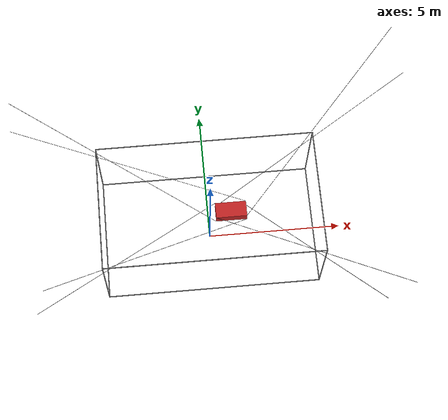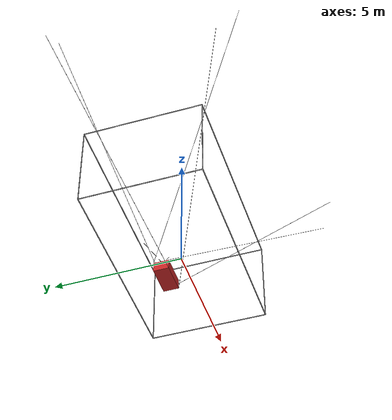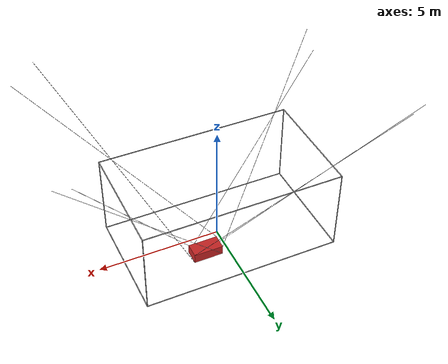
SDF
<?xml version="1.0"?>
<sdf version="1.4">
  <model name="sdf/caroca_copy">
    <!--Definition of the robot frame-->
    <link name="frame">
      <pose>0 0 0 0 0 0</pose>
      <inertial>
        <inertia>
          <ixx>100000</ixx>
          <iyy>100000</iyy>
          <izz>100000</izz>
          <ixy>0</ixy>
          <ixz>0</ixz>
          <iyz>0</iyz>
        </inertia>
        <mass>100000</mass>
      </inertial>
      <visual name="visual1">
        <geometry>
          <cylinder>
            <radius>0.02</radius>
            <length>3.48</length>
          </cylinder>
        </geometry>
        <pose>-4.000000 -2.100000 1.760000 0.000000 0.000000 0.000000</pose>
        <material>
          <script>
            <uri>file://media/materials/scripts/kitchen.material</uri>
            <name>Gazebo/Grey</name>
          </script>
        </material>
      </visual>
      <collision name="collision1">
        <geometry>
          <cylinder>
            <radius>0.02</radius>
          </cylinder>
        </geometry>
        <pose>-4.000000 -2.100000 1.760000 0.000000 0.000000 0.000000</pose>
      </collision>
      <visual name="visual2">
        <geometry>
          <cylinder>
            <radius>0.02</radius>
            <length>4.6</length>
          </cylinder>
        </geometry>
        <pose>-4.000000 0.200000 0.020000 1.570796 0.000000 0.000000</pose>
        <material>
          <script>
            <uri>file://media/materials/scripts/kitchen.material</uri>
            <name>Gazebo/Grey</name>
          </script>
        </material>
      </visual>
      <collision name="collision2">
        <geometry>
          <cylinder>
            <radius>0.02</radius>
          </cylinder>
        </geometry>
        <pose>-4.000000 0.200000 0.020000 1.570796 0.000000 0.000000</pose>
      </collision>
      <visual name="visual3">
        <geometry>
          <cylinder>
            <radius>0.02</radius>
            <length>8.0</length>
          </cylinder>
        </geometry>
        <pose>0.000000 -2.100000 0.020000 0.000000 1.570796 0.000000</pose>
        <material>
          <script>
            <uri>file://media/materials/scripts/kitchen.material</uri>
            <name>Gazebo/Grey</name>
          </script>
        </material>
      </visual>
      <collision name="collision3">
        <geometry>
          <cylinder>
            <radius>0.02</radius>
          </cylinder>
        </geometry>
        <pose>0.000000 -2.100000 0.020000 0.000000 1.570796 0.000000</pose>
      </collision>
      <visual name="visual4">
        <geometry>
          <cylinder>
            <radius>0.02</radius>
            <length>4.6</length>
          </cylinder>
        </geometry>
        <pose>-4.000000 0.200000 3.500000 1.570796 0.000000 0.000000</pose>
        <material>
          <script>
            <uri>file://media/materials/scripts/kitchen.material</uri>
            <name>Gazebo/Grey</name>
          </script>
        </material>
      </visual>
      <collision name="collision4">
        <geometry>
          <cylinder>
            <radius>0.02</radius>
          </cylinder>
        </geometry>
        <pose>-4.000000 0.200000 3.500000 1.570796 0.000000 0.000000</pose>
      </collision>
      <visual name="visual5">
        <geometry>
          <cylinder>
            <radius>0.02</radius>
            <length>8.0</length>
          </cylinder>
        </geometry>
        <pose>0.000000 -2.100000 3.500000 0.000000 1.570796 0.000000</pose>
        <material>
          <script>
            <uri>file://media/materials/scripts/kitchen.material</uri>
            <name>Gazebo/Grey</name>
          </script>
        </material>
      </visual>
      <collision name="collision5">
        <geometry>
          <cylinder>
            <radius>0.02</radius>
          </cylinder>
        </geometry>
        <pose>0.000000 -2.100000 3.500000 0.000000 1.570796 0.000000</pose>
      </collision>
      <visual name="visual6">
        <geometry>
          <cylinder>
            <radius>0.02</radius>
            <length>3.48</length>
          </cylinder>
        </geometry>
        <pose>-4.000000 2.500000 1.760000 0.000000 0.000000 0.000000</pose>
        <material>
          <script>
            <uri>file://media/materials/scripts/kitchen.material</uri>
            <name>Gazebo/Grey</name>
          </script>
        </material>
      </visual>
      <collision name="collision6">
        <geometry>
          <cylinder>
            <radius>0.02</radius>
          </cylinder>
        </geometry>
        <pose>-4.000000 2.500000 1.760000 0.000000 0.000000 0.000000</pose>
      </collision>
      <visual name="visual7">
        <geometry>
          <cylinder>
            <radius>0.02</radius>
            <length>8.0</length>
          </cylinder>
        </geometry>
        <pose>0.000000 2.500000 0.020000 0.000000 1.570796 0.000000</pose>
        <material>
          <script>
            <uri>file://media/materials/scripts/kitchen.material</uri>
            <name>Gazebo/Grey</name>
          </script>
        </material>
      </visual>
      <collision name="collision7">
        <geometry>
          <cylinder>
            <radius>0.02</radius>
          </cylinder>
        </geometry>
        <pose>0.000000 2.500000 0.020000 0.000000 1.570796 0.000000</pose>
      </collision>
      <visual name="visual8">
        <geometry>
          <cylinder>
            <radius>0.02</radius>
            <length>8.0</length>
          </cylinder>
        </geometry>
        <pose>0.000000 2.500000 3.500000 0.000000 1.570796 0.000000</pose>
        <material>
          <script>
            <uri>file://media/materials/scripts/kitchen.material</uri>
            <name>Gazebo/Grey</name>
          </script>
        </material>
      </visual>
      <collision name="collision8">
        <geometry>
          <cylinder>
            <radius>0.02</radius>
          </cylinder>
        </geometry>
        <pose>0.000000 2.500000 3.500000 0.000000 1.570796 0.000000</pose>
      </collision>
      <visual name="visual9">
        <geometry>
          <cylinder>
            <radius>0.02</radius>
            <length>3.48</length>
          </cylinder>
        </geometry>
        <pose>4.000000 -2.100000 1.760000 0.000000 0.000000 0.000000</pose>
        <material>
          <script>
            <uri>file://media/materials/scripts/kitchen.material</uri>
            <name>Gazebo/Grey</name>
          </script>
        </material>
      </visual>
      <collision name="collision9">
        <geometry>
          <cylinder>
            <radius>0.02</radius>
          </cylinder>
        </geometry>
        <pose>4.000000 -2.100000 1.760000 0.000000 0.000000 0.000000</pose>
      </collision>
      <visual name="visual10">
        <geometry>
          <cylinder>
            <radius>0.02</radius>
            <length>4.6</length>
          </cylinder>
        </geometry>
        <pose>4.000000 0.200000 0.020000 1.570796 0.000000 0.000000</pose>
        <material>
          <script>
            <uri>file://media/materials/scripts/kitchen.material</uri>
            <name>Gazebo/Grey</name>
          </script>
        </material>
      </visual>
      <collision name="collision10">
        <geometry>
          <cylinder>
            <radius>0.02</radius>
          </cylinder>
        </geometry>
        <pose>4.000000 0.200000 0.020000 1.570796 0.000000 0.000000</pose>
      </collision>
      <visual name="visual11">
        <geometry>
          <cylinder>
            <radius>0.02</radius>
            <length>4.6</length>
          </cylinder>
        </geometry>
        <pose>4.000000 0.200000 3.500000 1.570796 0.000000 0.000000</pose>
        <material>
          <script>
            <uri>file://media/materials/scripts/kitchen.material</uri>
            <name>Gazebo/Grey</name>
          </script>
        </material>
      </visual>
      <collision name="collision11">
        <geometry>
          <cylinder>
            <radius>0.02</radius>
          </cylinder>
        </geometry>
        <pose>4.000000 0.200000 3.500000 1.570796 0.000000 0.000000</pose>
      </collision>
      <visual name="visual12">
        <geometry>
          <cylinder>
            <radius>0.02</radius>
            <length>3.48</length>
          </cylinder>
        </geometry>
        <pose>4.000000 2.500000 1.760000 0.000000 0.000000 0.000000</pose>
        <material>
          <script>
            <uri>file://media/materials/scripts/kitchen.material</uri>
            <name>Gazebo/Grey</name>
          </script>
        </material>
      </visual>
      <collision name="collision12">
        <geometry>
          <cylinder>
            <radius>0.02</radius>
          </cylinder>
        </geometry>
        <pose>4.000000 2.500000 1.760000 0.000000 0.000000 0.000000</pose>
      </collision>
    </link>
    <!--Definition of the robot cables-->
    <!--Definition of the robot platform-->
    <link name="platform">
      <pose>0.900000 0.900000 0.200000 0.000000 0.000000 0.000000</pose>
      <visual name="visualpf">
        <geometry>
          <box>
            <size>1.200000 0.600000 0.400000</size>
          </box>
        </geometry>
        <material>
          <script>
            <uri>file://media/materials/scripts/kitchen.material</uri>
            <name>Gazebo/Red</name>
          </script>
        </material>
      </visual>
      <collision name="collisionpf">
        <geometry>
          <box>
            <size>1.200000 0.600000 0.400000</size>
          </box>
        </geometry>
      </collision>
      <inertial>
        <inertia>
          <ixx>6.5</ixx>
          <iyy>20.0</iyy>
          <izz>22.5</izz>
          <ixy>0.0</ixy>
          <ixz>0.0</ixz>
          <iyz>0.0</iyz>
        </inertia>
        <mass>150</mass>
      </inertial>
    </link>
    <link name="cable0">
      <pose>-2.216676 -1.332671 2.601673 -2.502679 0.853663 -1.883915</pose>
      <visual name="visual">
        <geometry>
          <cylinder>
            <radius>0.005</radius>
            <length>9.862575728479857</length>
          </cylinder>
        </geometry>
        <material>
          <script>
            <uri>file://media/materials/scripts/kitchen.material</uri>
            <name>Gazebo/Black</name>
          </script>
        </material>
      </visual>
      <inertial>
        <inertia>
          <ixx>0.001</ixx>
          <iyy>0.001</iyy>
          <izz>0.001</izz>
          <ixy>0</ixy>
          <ixz>0</ixz>
          <iyz>0</iyz>
        </inertia>
        <mass>0.001</mass>
      </inertial>
    </link>
    <link name="virt_X0">
      <inertial>
        <inertia>
          <ixx>0.001</ixx>
          <iyy>0.001</iyy>
          <izz>0.001</izz>
          <ixy>0</ixy>
          <ixz>0</ixz>
          <iyz>0</iyz>
        </inertia>
        <mass>0.001</mass>
      </inertial>
      <pose>-3.500000 -2.000000 3.500000 -2.502679 0.853663 -1.883915</pose>
    </link>
    <joint name="rev_X0" type="revolute">
      <pose>0 0 0 -2.502679 0.853663 -1.883915</pose>
      <parent>frame</parent>
      <child>virt_X0</child>
      <axis>
        <xyz>-0.202444 -0.625271 -0.753693</xyz>
        <limit>
          <effort>1000</effort>
          <velocity>10</velocity>
        </limit>
        <dynamics>
          <damping>0.01</damping>
        </dynamics>
      </axis>
    </joint>
    <link name="virt_Y0">
      <inertial>
        <inertia>
          <ixx>0.001</ixx>
          <iyy>0.001</iyy>
          <izz>0.001</izz>
          <ixy>0</ixy>
          <ixz>0</ixz>
          <iyz>0</iyz>
        </inertia>
        <mass>0.001</mass>
      </inertial>
      <pose>-3.500000 -2.000000 3.500000 -2.502679 0.853663 -1.883915</pose>
    </link>
    <joint name="rev_Y0" type="revolute">
      <pose>0 0 0 -2.502679 0.853663 -1.883915</pose>
      <parent>virt_X0</parent>
      <child>virt_Y0</child>
      <axis>
        <xyz>-0.625271 0.674859 -0.391920</xyz>
        <limit>
          <effort>1000</effort>
          <velocity>10</velocity>
        </limit>
        <dynamics>
          <damping>0.01</damping>
        </dynamics>
      </axis>
    </joint>
    <joint name="cable0" type="prismatic">
      <pose>0 0 -1.265688 -2.502679 0.853663 -1.883915</pose>
      <parent>virt_Y0</parent>
      <child>cable0</child>
      <axis>
        <xyz>-0.753693 -0.391920 0.527585</xyz>
        <limit>
          <lower>-4.931287864239929</lower>
          <upper>4.931287864239929</upper>
          <effort>10000</effort>
          <velocity>10</velocity>
        </limit>
        <dynamics>
          <damping>1</damping>
        </dynamics>
      </axis>
    </joint>
    <link name="virt_Xpf0">
      <inertial>
        <inertia>
          <ixx>0.001</ixx>
          <iyy>0.001</iyy>
          <izz>0.001</izz>
          <ixy>0</ixy>
          <ixz>0</ixz>
          <iyz>0</iyz>
        </inertia>
        <mass>0.001</mass>
      </inertial>
      <pose>1.500000 0.600000 0.000000 -2.502679 0.853663 -1.883915</pose>
    </link>
    <joint name="rev_Xpf0" type="revolute">
      <pose>0 0 0 -2.502679 0.853663 -1.883915</pose>
      <parent>platform</parent>
      <child>virt_Xpf0</child>
      <axis>
        <xyz>1 0 0</xyz>
        <limit>
          <effort>1000</effort>
          <velocity>10</velocity>
        </limit>
        <dynamics>
          <damping>0.01</damping>
        </dynamics>
      </axis>
    </joint>
    <link name="virt_Ypf0">
      <inertial>
        <inertia>
          <ixx>0.001</ixx>
          <iyy>0.001</iyy>
          <izz>0.001</izz>
          <ixy>0</ixy>
          <ixz>0</ixz>
          <iyz>0</iyz>
        </inertia>
        <mass>0.001</mass>
      </inertial>
      <pose>1.500000 0.600000 0.000000 -2.502679 0.853663 -1.883915</pose>
    </link>
    <joint name="rev_Ypf0" type="revolute">
      <pose>0 0 0 -2.502679 0.853663 -1.883915</pose>
      <parent>virt_Xpf0</parent>
      <child>virt_Ypf0</child>
      <axis>
        <xyz>0 1 0</xyz>
        <limit>
          <effort>1000</effort>
          <velocity>10</velocity>
        </limit>
        <dynamics>
          <damping>0.01</damping>
        </dynamics>
      </axis>
    </joint>
    <joint name="rev_Zpf0" type="revolute">
      <pose>0 0 0 -2.502679 0.853663 -1.883915</pose>
      <child>virt_Ypf0</child>
      <parent>cable0</parent>
      <axis>
        <xyz>0 0 1</xyz>
        <limit>
          <effort>1000</effort>
          <velocity>10</velocity>
        </limit>
        <dynamics>
          <damping>0.01</damping>
        </dynamics>
      </axis>
    </joint>
    <link name="cable1">
      <pose>-2.900075 -1.494800 3.010588 -2.340323 0.706181 -1.432126</pose>
      <visual name="visual">
        <geometry>
          <cylinder>
            <radius>0.005</radius>
            <length>9.862575728479857</length>
          </cylinder>
        </geometry>
        <material>
          <script>
            <uri>file://media/materials/scripts/kitchen.material</uri>
            <name>Gazebo/Black</name>
          </script>
        </material>
      </visual>
      <inertial>
        <inertia>
          <ixx>0.001</ixx>
          <iyy>0.001</iyy>
          <izz>0.001</izz>
          <ixy>0</ixy>
          <ixz>0</ixz>
          <iyz>0</iyz>
        </inertia>
        <mass>0.001</mass>
      </inertial>
    </link>
    <link name="virt_X1">
      <inertial>
        <inertia>
          <ixx>0.001</ixx>
          <iyy>0.001</iyy>
          <izz>0.001</izz>
          <ixy>0</ixy>
          <ixz>0</ixz>
          <iyz>0</iyz>
        </inertia>
        <mass>0.001</mass>
      </inertial>
      <pose>-3.500000 -2.000000 3.500000 -2.340323 0.706181 -1.432126</pose>
    </link>
    <joint name="rev_X1" type="revolute">
      <pose>0 0 0 -2.340323 0.706181 -1.432126</pose>
      <parent>frame</parent>
      <child>virt_X1</child>
      <axis>
        <xyz>0.105169 -0.753542 -0.648933</xyz>
        <limit>
          <effort>1000</effort>
          <velocity>10</velocity>
        </limit>
        <dynamics>
          <damping>0.01</damping>
        </dynamics>
      </axis>
    </joint>
    <link name="virt_Y1">
      <inertial>
        <inertia>
          <ixx>0.001</ixx>
          <iyy>0.001</iyy>
          <izz>0.001</izz>
          <ixy>0</ixy>
          <ixz>0</ixz>
          <iyz>0</iyz>
        </inertia>
        <mass>0.001</mass>
      </inertial>
      <pose>-3.500000 -2.000000 3.500000 -2.340323 0.706181 -1.432126</pose>
    </link>
    <joint name="rev_Y1" type="revolute">
      <pose>0 0 0 -2.340323 0.706181 -1.432126</pose>
      <parent>virt_X1</parent>
      <child>virt_Y1</child>
      <axis>
        <xyz>-0.753542 0.365438 -0.546470</xyz>
        <limit>
          <effort>1000</effort>
          <velocity>10</velocity>
        </limit>
        <dynamics>
          <damping>0.01</damping>
        </dynamics>
      </axis>
    </joint>
    <joint name="cable1" type="prismatic">
      <pose>0 0 -0.778527 -2.340323 0.706181 -1.432126</pose>
      <parent>virt_Y1</parent>
      <child>cable1</child>
      <axis>
        <xyz>-0.648933 -0.546470 0.529393</xyz>
        <limit>
          <lower>-4.931287864239929</lower>
          <upper>4.931287864239929</upper>
          <effort>10000</effort>
          <velocity>10</velocity>
        </limit>
        <dynamics>
          <damping>1</damping>
        </dynamics>
      </axis>
    </joint>
    <link name="virt_Xpf1">
      <inertial>
        <inertia>
          <ixx>0.001</ixx>
          <iyy>0.001</iyy>
          <izz>0.001</izz>
          <ixy>0</ixy>
          <ixz>0</ixz>
          <iyz>0</iyz>
        </inertia>
        <mass>0.001</mass>
      </inertial>
      <pose>0.300000 1.200000 0.400000 -2.340323 0.706181 -1.432126</pose>
    </link>
    <joint name="rev_Xpf1" type="revolute">
      <pose>0 0 0 -2.340323 0.706181 -1.432126</pose>
      <parent>platform</parent>
      <child>virt_Xpf1</child>
      <axis>
        <xyz>1 0 0</xyz>
        <limit>
          <effort>1000</effort>
          <velocity>10</velocity>
        </limit>
        <dynamics>
          <damping>0.01</damping>
        </dynamics>
      </axis>
    </joint>
    <link name="virt_Ypf1">
      <inertial>
        <inertia>
          <ixx>0.001</ixx>
          <iyy>0.001</iyy>
          <izz>0.001</izz>
          <ixy>0</ixy>
          <ixz>0</ixz>
          <iyz>0</iyz>
        </inertia>
        <mass>0.001</mass>
      </inertial>
      <pose>0.300000 1.200000 0.400000 -2.340323 0.706181 -1.432126</pose>
    </link>
    <joint name="rev_Ypf1" type="revolute">
      <pose>0 0 0 -2.340323 0.706181 -1.432126</pose>
      <parent>virt_Xpf1</parent>
      <child>virt_Ypf1</child>
      <axis>
        <xyz>0 1 0</xyz>
        <limit>
          <effort>1000</effort>
          <velocity>10</velocity>
        </limit>
        <dynamics>
          <damping>0.01</damping>
        </dynamics>
      </axis>
    </joint>
    <joint name="rev_Zpf1" type="revolute">
      <pose>0 0 0 -2.340323 0.706181 -1.432126</pose>
      <child>virt_Ypf1</child>
      <parent>cable1</parent>
      <axis>
        <xyz>0 0 1</xyz>
        <limit>
          <effort>1000</effort>
          <velocity>10</velocity>
        </limit>
        <dynamics>
          <damping>0.01</damping>
        </dynamics>
      </axis>
    </joint>
    <link name="cable2">
      <pose>3.359059 -1.885486 3.363464 -2.443690 -0.669172 1.525312</pose>
      <visual name="visual">
        <geometry>
          <cylinder>
            <radius>0.005</radius>
            <length>9.862575728479857</length>
          </cylinder>
        </geometry>
        <material>
          <script>
            <uri>file://media/materials/scripts/kitchen.material</uri>
            <name>Gazebo/Black</name>
          </script>
        </material>
      </visual>
      <inertial>
        <inertia>
          <ixx>0.001</ixx>
          <iyy>0.001</iyy>
          <izz>0.001</izz>
          <ixy>0</ixy>
          <ixz>0</ixz>
          <iyz>0</iyz>
        </inertia>
        <mass>0.001</mass>
      </inertial>
    </link>
    <link name="virt_X2">
      <inertial>
        <inertia>
          <ixx>0.001</ixx>
          <iyy>0.001</iyy>
          <izz>0.001</izz>
          <ixy>0</ixy>
          <ixz>0</ixz>
          <iyz>0</iyz>
        </inertia>
        <mass>0.001</mass>
      </inertial>
      <pose>3.500000 -2.000000 3.500000 -2.443690 -0.669172 1.525312</pose>
    </link>
    <joint name="rev_X2" type="revolute">
      <pose>0 0 0 -2.443690 -0.669172 1.525312</pose>
      <parent>frame</parent>
      <child>virt_X2</child>
      <axis>
        <xyz>0.035662 0.783524 0.620337</xyz>
        <limit>
          <effort>1000</effort>
          <velocity>10</velocity>
        </limit>
        <dynamics>
          <damping>0.01</damping>
        </dynamics>
      </axis>
    </joint>
    <link name="virt_Y2">
      <inertial>
        <inertia>
          <ixx>0.001</ixx>
          <iyy>0.001</iyy>
          <izz>0.001</izz>
          <ixy>0</ixy>
          <ixz>0</ixz>
          <iyz>0</iyz>
        </inertia>
        <mass>0.001</mass>
      </inertial>
      <pose>3.500000 -2.000000 3.500000 -2.443690 -0.669172 1.525312</pose>
    </link>
    <joint name="rev_Y2" type="revolute">
      <pose>0 0 0 -2.443690 -0.669172 1.525312</pose>
      <parent>virt_X2</parent>
      <child>virt_Y2</child>
      <axis>
        <xyz>0.783524 0.363386 -0.504024</xyz>
        <limit>
          <effort>1000</effort>
          <velocity>10</velocity>
        </limit>
        <dynamics>
          <damping>0.01</damping>
        </dynamics>
      </axis>
    </joint>
    <joint name="cable2" type="prismatic">
      <pose>0 0 -0.217193 -2.443690 -0.669172 1.525312</pose>
      <parent>virt_Y2</parent>
      <child>cable2</child>
      <axis>
        <xyz>0.620337 -0.504024 0.600951</xyz>
        <limit>
          <lower>-4.931287864239929</lower>
          <upper>4.931287864239929</upper>
          <effort>10000</effort>
          <velocity>10</velocity>
        </limit>
        <dynamics>
          <damping>1</damping>
        </dynamics>
      </axis>
    </joint>
    <link name="virt_Xpf2">
      <inertial>
        <inertia>
          <ixx>0.001</ixx>
          <iyy>0.001</iyy>
          <izz>0.001</izz>
          <ixy>0</ixy>
          <ixz>0</ixz>
          <iyz>0</iyz>
        </inertia>
        <mass>0.001</mass>
      </inertial>
      <pose>0.300000 0.600000 0.400000 -2.443690 -0.669172 1.525312</pose>
    </link>
    <joint name="rev_Xpf2" type="revolute">
      <pose>0 0 0 -2.443690 -0.669172 1.525312</pose>
      <parent>platform</parent>
      <child>virt_Xpf2</child>
      <axis>
        <xyz>1 0 0</xyz>
        <limit>
          <effort>1000</effort>
          <velocity>10</velocity>
        </limit>
        <dynamics>
          <damping>0.01</damping>
        </dynamics>
      </axis>
    </joint>
    <link name="virt_Ypf2">
      <inertial>
        <inertia>
          <ixx>0.001</ixx>
          <iyy>0.001</iyy>
          <izz>0.001</izz>
          <ixy>0</ixy>
          <ixz>0</ixz>
          <iyz>0</iyz>
        </inertia>
        <mass>0.001</mass>
      </inertial>
      <pose>0.300000 0.600000 0.400000 -2.443690 -0.669172 1.525312</pose>
    </link>
    <joint name="rev_Ypf2" type="revolute">
      <pose>0 0 0 -2.443690 -0.669172 1.525312</pose>
      <parent>virt_Xpf2</parent>
      <child>virt_Ypf2</child>
      <axis>
        <xyz>0 1 0</xyz>
        <limit>
          <effort>1000</effort>
          <velocity>10</velocity>
        </limit>
        <dynamics>
          <damping>0.01</damping>
        </dynamics>
      </axis>
    </joint>
    <joint name="rev_Zpf2" type="revolute">
      <pose>0 0 0 -2.443690 -0.669172 1.525312</pose>
      <child>virt_Ypf2</child>
      <parent>cable2</parent>
      <axis>
        <xyz>0 0 1</xyz>
        <limit>
          <effort>1000</effort>
          <velocity>10</velocity>
        </limit>
        <dynamics>
          <damping>0.01</damping>
        </dynamics>
      </axis>
    </joint>
    <link name="cable3">
      <pose>3.416238 -1.865980 3.353416 -2.400941 -0.399098 0.960485</pose>
      <visual name="visual">
        <geometry>
          <cylinder>
            <radius>0.005</radius>
            <length>9.862575728479857</length>
          </cylinder>
        </geometry>
        <material>
          <script>
            <uri>file://media/materials/scripts/kitchen.material</uri>
            <name>Gazebo/Black</name>
          </script>
        </material>
      </visual>
      <inertial>
        <inertia>
          <ixx>0.001</ixx>
          <iyy>0.001</iyy>
          <izz>0.001</izz>
          <ixy>0</ixy>
          <ixz>0</ixz>
          <iyz>0</iyz>
        </inertia>
        <mass>0.001</mass>
      </inertial>
    </link>
    <link name="virt_X3">
      <inertial>
        <inertia>
          <ixx>0.001</ixx>
          <iyy>0.001</iyy>
          <izz>0.001</izz>
          <ixy>0</ixy>
          <ixz>0</ixz>
          <iyz>0</iyz>
        </inertia>
        <mass>0.001</mass>
      </inertial>
      <pose>3.500000 -2.000000 3.500000 -2.400941 -0.399098 0.960485</pose>
    </link>
    <joint name="rev_X3" type="revolute">
      <pose>0 0 0 -2.400941 -0.399098 0.960485</pose>
      <parent>frame</parent>
      <child>virt_X3</child>
      <axis>
        <xyz>0.528082 0.755069 0.388588</xyz>
        <limit>
          <effort>1000</effort>
          <velocity>10</velocity>
        </limit>
        <dynamics>
          <damping>0.01</damping>
        </dynamics>
      </axis>
    </joint>
    <link name="virt_Y3">
      <inertial>
        <inertia>
          <ixx>0.001</ixx>
          <iyy>0.001</iyy>
          <izz>0.001</izz>
          <ixy>0</ixy>
          <ixz>0</ixz>
          <iyz>0</iyz>
        </inertia>
        <mass>0.001</mass>
      </inertial>
      <pose>3.500000 -2.000000 3.500000 -2.400941 -0.399098 0.960485</pose>
    </link>
    <joint name="rev_Y3" type="revolute">
      <pose>0 0 0 -2.400941 -0.399098 0.960485</pose>
      <parent>virt_X3</parent>
      <child>virt_Y3</child>
      <axis>
        <xyz>0.755069 -0.208110 -0.621740</xyz>
        <limit>
          <effort>1000</effort>
          <velocity>10</velocity>
        </limit>
        <dynamics>
          <damping>0.01</damping>
        </dynamics>
      </axis>
    </joint>
    <joint name="cable3" type="prismatic">
      <pose>0 0 -0.206528 -2.400941 -0.399098 0.960485</pose>
      <parent>virt_Y3</parent>
      <child>cable3</child>
      <axis>
        <xyz>0.388588 -0.621740 0.680028</xyz>
        <limit>
          <lower>-4.931287864239929</lower>
          <upper>4.931287864239929</upper>
          <effort>10000</effort>
          <velocity>10</velocity>
        </limit>
        <dynamics>
          <damping>1</damping>
        </dynamics>
      </axis>
    </joint>
    <link name="virt_Xpf3">
      <inertial>
        <inertia>
          <ixx>0.001</ixx>
          <iyy>0.001</iyy>
          <izz>0.001</izz>
          <ixy>0</ixy>
          <ixz>0</ixz>
          <iyz>0</iyz>
        </inertia>
        <mass>0.001</mass>
      </inertial>
      <pose>1.500000 1.200000 0.000000 -2.400941 -0.399098 0.960485</pose>
    </link>
    <joint name="rev_Xpf3" type="revolute">
      <pose>0 0 0 -2.400941 -0.399098 0.960485</pose>
      <parent>platform</parent>
      <child>virt_Xpf3</child>
      <axis>
        <xyz>1 0 0</xyz>
        <limit>
          <effort>1000</effort>
          <velocity>10</velocity>
        </limit>
        <dynamics>
          <damping>0.01</damping>
        </dynamics>
      </axis>
    </joint>
    <link name="virt_Ypf3">
      <inertial>
        <inertia>
          <ixx>0.001</ixx>
          <iyy>0.001</iyy>
          <izz>0.001</izz>
          <ixy>0</ixy>
          <ixz>0</ixz>
          <iyz>0</iyz>
        </inertia>
        <mass>0.001</mass>
      </inertial>
      <pose>1.500000 1.200000 0.000000 -2.400941 -0.399098 0.960485</pose>
    </link>
    <joint name="rev_Ypf3" type="revolute">
      <pose>0 0 0 -2.400941 -0.399098 0.960485</pose>
      <parent>virt_Xpf3</parent>
      <child>virt_Ypf3</child>
      <axis>
        <xyz>0 1 0</xyz>
        <limit>
          <effort>1000</effort>
          <velocity>10</velocity>
        </limit>
        <dynamics>
          <damping>0.01</damping>
        </dynamics>
      </axis>
    </joint>
    <joint name="rev_Zpf3" type="revolute">
      <pose>0 0 0 -2.400941 -0.399098 0.960485</pose>
      <child>virt_Ypf3</child>
      <parent>cable3</parent>
      <axis>
        <xyz>0 0 1</xyz>
        <limit>
          <effort>1000</effort>
          <velocity>10</velocity>
        </limit>
        <dynamics>
          <damping>0.01</damping>
        </dynamics>
      </axis>
    </joint>
    <link name="cable4">
      <pose>-3.200916 1.889811 3.224528 2.761086 0.789412 2.275508</pose>
      <visual name="visual">
        <geometry>
          <cylinder>
            <radius>0.005</radius>
            <length>9.862575728479857</length>
          </cylinder>
        </geometry>
        <material>
          <script>
            <uri>file://media/materials/scripts/kitchen.material</uri>
            <name>Gazebo/Black</name>
          </script>
        </material>
      </visual>
      <inertial>
        <inertia>
          <ixx>0.001</ixx>
          <iyy>0.001</iyy>
          <izz>0.001</izz>
          <ixy>0</ixy>
          <ixz>0</ixz>
          <iyz>0</iyz>
        </inertia>
        <mass>0.001</mass>
      </inertial>
    </link>
    <link name="virt_X4">
      <inertial>
        <inertia>
          <ixx>0.001</ixx>
          <iyy>0.001</iyy>
          <izz>0.001</izz>
          <ixy>0</ixy>
          <ixz>0</ixz>
          <iyz>0</iyz>
        </inertia>
        <mass>0.001</mass>
      </inertial>
      <pose>-3.500000 2.000000 3.500000 2.761086 0.789412 2.275508</pose>
    </link>
    <joint name="rev_X4" type="revolute">
      <pose>0 0 0 2.761086 0.789412 2.275508</pose>
      <parent>frame</parent>
      <child>virt_X4</child>
      <axis>
        <xyz>-0.456231 0.536506 -0.709939</xyz>
        <limit>
          <effort>1000</effort>
          <velocity>10</velocity>
        </limit>
        <dynamics>
          <damping>0.01</damping>
        </dynamics>
      </axis>
    </joint>
    <link name="virt_Y4">
      <inertial>
        <inertia>
          <ixx>0.001</ixx>
          <iyy>0.001</iyy>
          <izz>0.001</izz>
          <ixy>0</ixy>
          <ixz>0</ixz>
          <iyz>0</iyz>
        </inertia>
        <mass>0.001</mass>
      </inertial>
      <pose>-3.500000 2.000000 3.500000 2.761086 0.789412 2.275508</pose>
    </link>
    <joint name="rev_Y4" type="revolute">
      <pose>0 0 0 2.761086 0.789412 2.275508</pose>
      <parent>virt_X4</parent>
      <child>virt_Y4</child>
      <axis>
        <xyz>0.536506 0.802340 0.261557</xyz>
        <limit>
          <effort>1000</effort>
          <velocity>10</velocity>
        </limit>
        <dynamics>
          <damping>0.01</damping>
        </dynamics>
      </axis>
    </joint>
    <joint name="cable4" type="prismatic">
      <pose>0 0 -0.388124 2.761086 0.789412 2.275508</pose>
      <parent>virt_Y4</parent>
      <child>cable4</child>
      <axis>
        <xyz>-0.709939 0.261557 0.653892</xyz>
        <limit>
          <lower>-4.931287864239929</lower>
          <upper>4.931287864239929</upper>
          <effort>10000</effort>
          <velocity>10</velocity>
        </limit>
        <dynamics>
          <damping>1</damping>
        </dynamics>
      </axis>
    </joint>
    <link name="virt_Xpf4">
      <inertial>
        <inertia>
          <ixx>0.001</ixx>
          <iyy>0.001</iyy>
          <izz>0.001</izz>
          <ixy>0</ixy>
          <ixz>0</ixz>
          <iyz>0</iyz>
        </inertia>
        <mass>0.001</mass>
      </inertial>
      <pose>0.300000 0.600000 0.000000 2.761086 0.789412 2.275508</pose>
    </link>
    <joint name="rev_Xpf4" type="revolute">
      <pose>0 0 0 2.761086 0.789412 2.275508</pose>
      <parent>platform</parent>
      <child>virt_Xpf4</child>
      <axis>
        <xyz>1 0 0</xyz>
        <limit>
          <effort>1000</effort>
          <velocity>10</velocity>
        </limit>
        <dynamics>
          <damping>0.01</damping>
        </dynamics>
      </axis>
    </joint>
    <link name="virt_Ypf4">
      <inertial>
        <inertia>
          <ixx>0.001</ixx>
          <iyy>0.001</iyy>
          <izz>0.001</izz>
          <ixy>0</ixy>
          <ixz>0</ixz>
          <iyz>0</iyz>
        </inertia>
        <mass>0.001</mass>
      </inertial>
      <pose>0.300000 0.600000 0.000000 2.761086 0.789412 2.275508</pose>
    </link>
    <joint name="rev_Ypf4" type="revolute">
      <pose>0 0 0 2.761086 0.789412 2.275508</pose>
      <parent>virt_Xpf4</parent>
      <child>virt_Ypf4</child>
      <axis>
        <xyz>0 1 0</xyz>
        <limit>
          <effort>1000</effort>
          <velocity>10</velocity>
        </limit>
        <dynamics>
          <damping>0.01</damping>
        </dynamics>
      </axis>
    </joint>
    <joint name="rev_Zpf4" type="revolute">
      <pose>0 0 0 2.761086 0.789412 2.275508</pose>
      <child>virt_Ypf4</child>
      <parent>cable4</parent>
      <axis>
        <xyz>0 0 1</xyz>
        <limit>
          <effort>1000</effort>
          <velocity>10</velocity>
        </limit>
        <dynamics>
          <damping>0.01</damping>
        </dynamics>
      </axis>
    </joint>
    <link name="cable5">
      <pose>-2.652894 1.864463 2.974794 2.889038 1.001262 2.685588</pose>
      <visual name="visual">
        <geometry>
          <cylinder>
            <radius>0.005</radius>
            <length>9.862575728479857</length>
          </cylinder>
        </geometry>
        <material>
          <script>
            <uri>file://media/materials/scripts/kitchen.material</uri>
            <name>Gazebo/Black</name>
          </script>
        </material>
      </visual>
      <inertial>
        <inertia>
          <ixx>0.001</ixx>
          <iyy>0.001</iyy>
          <izz>0.001</izz>
          <ixy>0</ixy>
          <ixz>0</ixz>
          <iyz>0</iyz>
        </inertia>
        <mass>0.001</mass>
      </inertial>
    </link>
    <link name="virt_X5">
      <inertial>
        <inertia>
          <ixx>0.001</ixx>
          <iyy>0.001</iyy>
          <izz>0.001</izz>
          <ixy>0</ixy>
          <ixz>0</ixz>
          <iyz>0</iyz>
        </inertia>
        <mass>0.001</mass>
      </inertial>
      <pose>-3.500000 2.000000 3.500000 2.889038 1.001262 2.685588</pose>
    </link>
    <joint name="rev_X5" type="revolute">
      <pose>0 0 0 2.889038 1.001262 2.685588</pose>
      <parent>frame</parent>
      <child>virt_X5</child>
      <axis>
        <xyz>-0.484140 0.237462 -0.842152</xyz>
        <limit>
          <effort>1000</effort>
          <velocity>10</velocity>
        </limit>
        <dynamics>
          <damping>0.01</damping>
        </dynamics>
      </axis>
    </joint>
    <link name="virt_Y5">
      <inertial>
        <inertia>
          <ixx>0.001</ixx>
          <iyy>0.001</iyy>
          <izz>0.001</izz>
          <ixy>0</ixy>
          <ixz>0</ixz>
          <iyz>0</iyz>
        </inertia>
        <mass>0.001</mass>
      </inertial>
      <pose>-3.500000 2.000000 3.500000 2.889038 1.001262 2.685588</pose>
    </link>
    <joint name="rev_Y5" type="revolute">
      <pose>0 0 0 2.889038 1.001262 2.685588</pose>
      <parent>virt_X5</parent>
      <child>virt_Y5</child>
      <axis>
        <xyz>0.237462 0.962006 0.134744</xyz>
        <limit>
          <effort>1000</effort>
          <velocity>10</velocity>
        </limit>
        <dynamics>
          <damping>0.01</damping>
        </dynamics>
      </axis>
    </joint>
    <joint name="cable5" type="prismatic">
      <pose>0 0 -0.835465 2.889038 1.001262 2.685588</pose>
      <parent>virt_Y5</parent>
      <child>cable5</child>
      <axis>
        <xyz>-0.842152 0.134744 0.522134</xyz>
        <limit>
          <lower>-4.931287864239929</lower>
          <upper>4.931287864239929</upper>
          <effort>10000</effort>
          <velocity>10</velocity>
        </limit>
        <dynamics>
          <damping>1</damping>
        </dynamics>
      </axis>
    </joint>
    <link name="virt_Xpf5">
      <inertial>
        <inertia>
          <ixx>0.001</ixx>
          <iyy>0.001</iyy>
          <izz>0.001</izz>
          <ixy>0</ixy>
          <ixz>0</ixz>
          <iyz>0</iyz>
        </inertia>
        <mass>0.001</mass>
      </inertial>
      <pose>1.500000 1.200000 0.400000 2.889038 1.001262 2.685588</pose>
    </link>
    <joint name="rev_Xpf5" type="revolute">
      <pose>0 0 0 2.889038 1.001262 2.685588</pose>
      <parent>platform</parent>
      <child>virt_Xpf5</child>
      <axis>
        <xyz>1 0 0</xyz>
        <limit>
          <effort>1000</effort>
          <velocity>10</velocity>
        </limit>
        <dynamics>
          <damping>0.01</damping>
        </dynamics>
      </axis>
    </joint>
    <link name="virt_Ypf5">
      <inertial>
        <inertia>
          <ixx>0.001</ixx>
          <iyy>0.001</iyy>
          <izz>0.001</izz>
          <ixy>0</ixy>
          <ixz>0</ixz>
          <iyz>0</iyz>
        </inertia>
        <mass>0.001</mass>
      </inertial>
      <pose>1.500000 1.200000 0.400000 2.889038 1.001262 2.685588</pose>
    </link>
    <joint name="rev_Ypf5" type="revolute">
      <pose>0 0 0 2.889038 1.001262 2.685588</pose>
      <parent>virt_Xpf5</parent>
      <child>virt_Ypf5</child>
      <axis>
        <xyz>0 1 0</xyz>
        <limit>
          <effort>1000</effort>
          <velocity>10</velocity>
        </limit>
        <dynamics>
          <damping>0.01</damping>
        </dynamics>
      </axis>
    </joint>
    <joint name="rev_Zpf5" type="revolute">
      <pose>0 0 0 2.889038 1.001262 2.685588</pose>
      <child>virt_Ypf5</child>
      <parent>cable5</parent>
      <axis>
        <xyz>0 0 1</xyz>
        <limit>
          <effort>1000</effort>
          <velocity>10</velocity>
        </limit>
        <dynamics>
          <damping>0.01</damping>
        </dynamics>
      </axis>
    </joint>
    <link name="cable6">
      <pose>3.999459 2.349621 4.274162 2.717398 -0.531535 -1.803043</pose>
      <visual name="visual">
        <geometry>
          <cylinder>
            <radius>0.005</radius>
            <length>9.862575728479857</length>
          </cylinder>
        </geometry>
        <material>
          <script>
            <uri>file://media/materials/scripts/kitchen.material</uri>
            <name>Gazebo/Black</name>
          </script>
        </material>
      </visual>
      <inertial>
        <inertia>
          <ixx>0.001</ixx>
          <iyy>0.001</iyy>
          <izz>0.001</izz>
          <ixy>0</ixy>
          <ixz>0</ixz>
          <iyz>0</iyz>
        </inertia>
        <mass>0.001</mass>
      </inertial>
    </link>
    <link name="virt_X6">
      <inertial>
        <inertia>
          <ixx>0.001</ixx>
          <iyy>0.001</iyy>
          <izz>0.001</izz>
          <ixy>0</ixy>
          <ixz>0</ixz>
          <iyz>0</iyz>
        </inertia>
        <mass>0.001</mass>
      </inertial>
      <pose>3.500000 2.000000 3.500000 2.717398 -0.531535 -1.803043</pose>
    </link>
    <joint name="rev_X6" type="revolute">
      <pose>0 0 0 2.717398 -0.531535 -1.803043</pose>
      <parent>frame</parent>
      <child>virt_X6</child>
      <axis>
        <xyz>-0.198409 -0.838886 0.506857</xyz>
        <limit>
          <effort>1000</effort>
          <velocity>10</velocity>
        </limit>
        <dynamics>
          <damping>0.01</damping>
        </dynamics>
      </axis>
    </joint>
    <link name="virt_Y6">
      <inertial>
        <inertia>
          <ixx>0.001</ixx>
          <iyy>0.001</iyy>
          <izz>0.001</izz>
          <ixy>0</ixy>
          <ixz>0</ixz>
          <iyz>0</iyz>
        </inertia>
        <mass>0.001</mass>
      </inertial>
      <pose>3.500000 2.000000 3.500000 2.717398 -0.531535 -1.803043</pose>
    </link>
    <joint name="rev_Y6" type="revolute">
      <pose>0 0 0 2.717398 -0.531535 -1.803043</pose>
      <parent>virt_X6</parent>
      <child>virt_Y6</child>
      <axis>
        <xyz>-0.838886 0.412780 0.354800</xyz>
        <limit>
          <effort>1000</effort>
          <velocity>10</velocity>
        </limit>
        <dynamics>
          <damping>0.01</damping>
        </dynamics>
      </axis>
    </joint>
    <joint name="cable6" type="prismatic">
      <pose>0 0 1.231488 2.717398 -0.531535 -1.803043</pose>
      <parent>virt_Y6</parent>
      <child>cable6</child>
      <axis>
        <xyz>0.506857 0.354800 0.785629</xyz>
        <limit>
          <lower>-4.931287864239929</lower>
          <upper>4.931287864239929</upper>
          <effort>10000</effort>
          <velocity>10</velocity>
        </limit>
        <dynamics>
          <damping>1</damping>
        </dynamics>
      </axis>
    </joint>
    <link name="virt_Xpf6">
      <inertial>
        <inertia>
          <ixx>0.001</ixx>
          <iyy>0.001</iyy>
          <izz>0.001</izz>
          <ixy>0</ixy>
          <ixz>0</ixz>
          <iyz>0</iyz>
        </inertia>
        <mass>0.001</mass>
      </inertial>
      <pose>1.500000 0.600000 0.400000 2.717398 -0.531535 -1.803043</pose>
    </link>
    <joint name="rev_Xpf6" type="revolute">
      <pose>0 0 0 2.717398 -0.531535 -1.803043</pose>
      <parent>platform</parent>
      <child>virt_Xpf6</child>
      <axis>
        <xyz>1 0 0</xyz>
        <limit>
          <effort>1000</effort>
          <velocity>10</velocity>
        </limit>
        <dynamics>
          <damping>0.01</damping>
        </dynamics>
      </axis>
    </joint>
    <link name="virt_Ypf6">
      <inertial>
        <inertia>
          <ixx>0.001</ixx>
          <iyy>0.001</iyy>
          <izz>0.001</izz>
          <ixy>0</ixy>
          <ixz>0</ixz>
          <iyz>0</iyz>
        </inertia>
        <mass>0.001</mass>
      </inertial>
      <pose>1.500000 0.600000 0.400000 2.717398 -0.531535 -1.803043</pose>
    </link>
    <joint name="rev_Ypf6" type="revolute">
      <pose>0 0 0 2.717398 -0.531535 -1.803043</pose>
      <parent>virt_Xpf6</parent>
      <child>virt_Ypf6</child>
      <axis>
        <xyz>0 1 0</xyz>
        <limit>
          <effort>1000</effort>
          <velocity>10</velocity>
        </limit>
        <dynamics>
          <damping>0.01</damping>
        </dynamics>
      </axis>
    </joint>
    <joint name="rev_Zpf6" type="revolute">
      <pose>0 0 0 2.717398 -0.531535 -1.803043</pose>
      <child>virt_Ypf6</child>
      <parent>cable6</parent>
      <axis>
        <xyz>0 0 1</xyz>
        <limit>
          <effort>1000</effort>
          <velocity>10</velocity>
        </limit>
        <dynamics>
          <damping>0.01</damping>
        </dynamics>
      </axis>
    </joint>
    <link name="cable7">
      <pose>3.581123 2.020281 3.588728 2.916881 -0.727987 -2.565718</pose>
      <visual name="visual">
        <geometry>
          <cylinder>
            <radius>0.005</radius>
            <length>9.862575728479857</length>
          </cylinder>
        </geometry>
        <material>
          <script>
            <uri>file://media/materials/scripts/kitchen.material</uri>
            <name>Gazebo/Black</name>
          </script>
        </material>
      </visual>
      <inertial>
        <inertia>
          <ixx>0.001</ixx>
          <iyy>0.001</iyy>
          <izz>0.001</izz>
          <ixy>0</ixy>
          <ixz>0</ixz>
          <iyz>0</iyz>
        </inertia>
        <mass>0.001</mass>
      </inertial>
    </link>
    <link name="virt_X7">
      <inertial>
        <inertia>
          <ixx>0.001</ixx>
          <iyy>0.001</iyy>
          <izz>0.001</izz>
          <ixy>0</ixy>
          <ixz>0</ixz>
          <iyz>0</iyz>
        </inertia>
        <mass>0.001</mass>
      </inertial>
      <pose>3.500000 2.000000 3.500000 2.916881 -0.727987 -2.565718</pose>
    </link>
    <joint name="rev_X7" type="revolute">
      <pose>0 0 0 2.916881 -0.727987 -2.565718</pose>
      <parent>frame</parent>
      <child>virt_X7</child>
      <axis>
        <xyz>-0.626115 -0.406529 0.665368</xyz>
        <limit>
          <effort>1000</effort>
          <velocity>10</velocity>
        </limit>
        <dynamics>
          <damping>0.01</damping>
        </dynamics>
      </axis>
    </joint>
    <link name="virt_Y7">
      <inertial>
        <inertia>
          <ixx>0.001</ixx>
          <iyy>0.001</iyy>
          <izz>0.001</izz>
          <ixy>0</ixy>
          <ixz>0</ixz>
          <iyz>0</iyz>
        </inertia>
        <mass>0.001</mass>
      </inertial>
      <pose>3.500000 2.000000 3.500000 2.916881 -0.727987 -2.565718</pose>
    </link>
    <joint name="rev_Y7" type="revolute">
      <pose>0 0 0 2.916881 -0.727987 -2.565718</pose>
      <parent>virt_X7</parent>
      <child>virt_Y7</child>
      <axis>
        <xyz>-0.406529 0.898368 0.166342</xyz>
        <limit>
          <effort>1000</effort>
          <velocity>10</velocity>
        </limit>
        <dynamics>
          <damping>0.01</damping>
        </dynamics>
      </axis>
    </joint>
    <joint name="cable7" type="prismatic">
      <pose>0 0 0.125013 2.916881 -0.727987 -2.565718</pose>
      <parent>virt_Y7</parent>
      <child>cable7</child>
      <axis>
        <xyz>0.665368 0.166342 0.727747</xyz>
        <limit>
          <lower>-4.931287864239929</lower>
          <upper>4.931287864239929</upper>
          <effort>10000</effort>
          <velocity>10</velocity>
        </limit>
        <dynamics>
          <damping>1</damping>
        </dynamics>
      </axis>
    </joint>
    <link name="virt_Xpf7">
      <inertial>
        <inertia>
          <ixx>0.001</ixx>
          <iyy>0.001</iyy>
          <izz>0.001</izz>
          <ixy>0</ixy>
          <ixz>0</ixz>
          <iyz>0</iyz>
        </inertia>
        <mass>0.001</mass>
      </inertial>
      <pose>0.300000 1.200000 0.000000 2.916881 -0.727987 -2.565718</pose>
    </link>
    <joint name="rev_Xpf7" type="revolute">
      <pose>0 0 0 2.916881 -0.727987 -2.565718</pose>
      <parent>platform</parent>
      <child>virt_Xpf7</child>
      <axis>
        <xyz>1 0 0</xyz>
        <limit>
          <effort>1000</effort>
          <velocity>10</velocity>
        </limit>
        <dynamics>
          <damping>0.01</damping>
        </dynamics>
      </axis>
    </joint>
    <link name="virt_Ypf7">
      <inertial>
        <inertia>
          <ixx>0.001</ixx>
          <iyy>0.001</iyy>
          <izz>0.001</izz>
          <ixy>0</ixy>
          <ixz>0</ixz>
          <iyz>0</iyz>
        </inertia>
        <mass>0.001</mass>
      </inertial>
      <pose>0.300000 1.200000 0.000000 2.916881 -0.727987 -2.565718</pose>
    </link>
    <joint name="rev_Ypf7" type="revolute">
      <pose>0 0 0 2.916881 -0.727987 -2.565718</pose>
      <parent>virt_Xpf7</parent>
      <child>virt_Ypf7</child>
      <axis>
        <xyz>0 1 0</xyz>
        <limit>
          <effort>1000</effort>
          <velocity>10</velocity>
        </limit>
        <dynamics>
          <damping>0.01</damping>
        </dynamics>
      </axis>
    </joint>
    <joint name="rev_Zpf7" type="revolute">
      <pose>0 0 0 2.916881 -0.727987 -2.565718</pose>
      <child>virt_Ypf7</child>
      <parent>cable7</parent>
      <axis>
        <xyz>0 0 1</xyz>
        <limit>
          <effort>1000</effort>
          <velocity>10</velocity>
        </limit>
        <dynamics>
          <damping>0.01</damping>
        </dynamics>
      </axis>
    </joint>
    <plugin name="cdpr_plugin" filename="libcdpr_plugin.so"/>
  </model>
</sdf>
